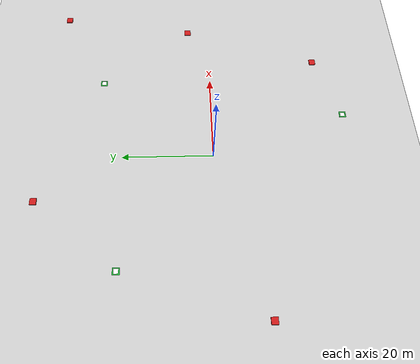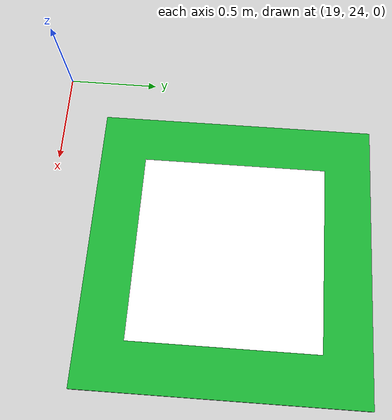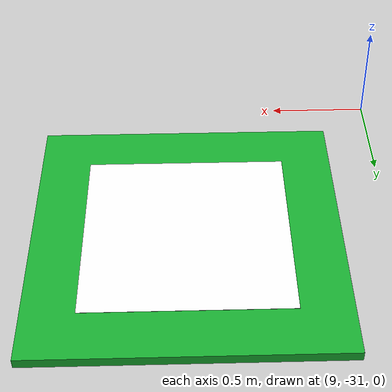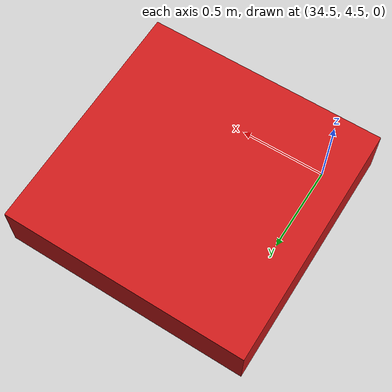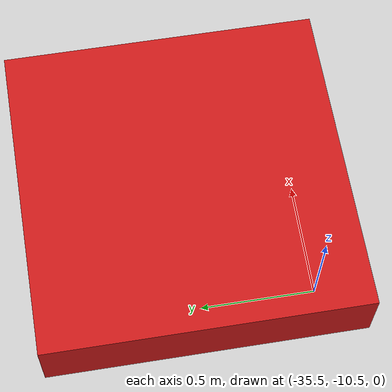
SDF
<?xml version="1.0" encoding="UTF-8"?>
<sdf version="1.9">
  <world name="patrol_site">
    <physics type="ode">
      <max_step_size>0.004</max_step_size>
      <real_time_factor>1.0</real_time_factor>
      <real_time_update_rate>250</real_time_update_rate>
    </physics>
    <gravity>0 0 -9.8</gravity>
    <magnetic_field>6e-06 2.3e-05 -4.2e-05</magnetic_field>
    <atmosphere type="adiabatic"/>
    <scene>
      <grid>false</grid>
      <ambient>0.4 0.4 0.4 1</ambient>
      <background>0.7 0.7 0.7 1</background>
      <shadows>true</shadows>
    </scene>
    <model name="ground_plane">
      <static>true</static>
      <link name="link">
        <collision name="collision">
          <geometry><plane><normal>0 0 1</normal><size>1 1</size></plane></geometry>
        </collision>
        <visual name="visual">
          <geometry><plane><normal>0 0 1</normal><size>500 500</size></plane></geometry>
          <material><ambient>0.8 0.8 0.8 1</ambient><diffuse>0.8 0.8 0.8 1</diffuse><specular>0.8 0.8 0.8 1</specular></material>
        </visual>
      </link>
    </model>
    <light name="sunUTC" type="directional">
      <pose>0 0 500 0 -0 0</pose>
      <cast_shadows>true</cast_shadows>
      <intensity>1</intensity>
      <direction>0.001 0.625 -0.78</direction>
      <diffuse>0.904 0.904 0.904 1</diffuse>
      <specular>0.271 0.271 0.271 1</specular>
      <attenuation><range>2000</range><linear>0</linear><constant>1</constant><quadratic>0</quadratic></attenuation>
    </light>
    <spherical_coordinates>
      <surface_model>EARTH_WGS84</surface_model>
      <world_frame_orientation>ENU</world_frame_orientation>
      <latitude_deg>47.397971057728974</latitude_deg>
      <longitude_deg>8.546163739800146</longitude_deg>
      <elevation>0</elevation>
    </spherical_coordinates>

    <model name="pad_G1">
      <static>true</static>
      <pose>20 25 0.025 0 0 0</pose>
      <link name="link">
        <collision name="collision"><geometry><box><size>1.5 1.5 0.05</size></box></geometry></collision>
        <visual name="visual">
          <geometry><box><size>1.5 1.5 0.05</size></box></geometry>
          <material><ambient>0.1 0.7 0.2 1</ambient><diffuse>0.1 0.7 0.2 1</diffuse><specular>0.1 0.1 0.1 1</specular></material>
        </visual>
      </link>
    </model>
    <include>
      <uri>model://tag36h11_0</uri>
      <name>tag_G1</name>
      <pose>20 25 0.052 0 0 0</pose>
    </include>
    <model name="pad_G2">
      <static>true</static>
      <pose>-25 20 0.025 0 0 0</pose>
      <link name="link">
        <collision name="collision"><geometry><box><size>1.5 1.5 0.05</size></box></geometry></collision>
        <visual name="visual">
          <geometry><box><size>1.5 1.5 0.05</size></box></geometry>
          <material><ambient>0.1 0.7 0.2 1</ambient><diffuse>0.1 0.7 0.2 1</diffuse><specular>0.1 0.1 0.1 1</specular></material>
        </visual>
      </link>
    </model>
    <include>
      <uri>model://tag36h11_1</uri>
      <name>tag_G2</name>
      <pose>-25 20 0.052 0 0 0</pose>
    </include>
    <model name="pad_G3">
      <static>true</static>
      <pose>10 -30 0.025 0 0 0</pose>
      <link name="link">
        <collision name="collision"><geometry><box><size>1.5 1.5 0.05</size></box></geometry></collision>
        <visual name="visual">
          <geometry><box><size>1.5 1.5 0.05</size></box></geometry>
          <material><ambient>0.1 0.7 0.2 1</ambient><diffuse>0.1 0.7 0.2 1</diffuse><specular>0.1 0.1 0.1 1</specular></material>
        </visual>
      </link>
    </model>
    <include>
      <uri>model://tag36h11_2</uri>
      <name>tag_G3</name>
      <pose>10 -30 0.052 0 0 0</pose>
    </include>
    <model name="box_R1">
      <static>true</static>
      <pose>35 5 0.150 0 0 0</pose>
      <link name="link">
        <collision name="collision"><geometry><box><size>1.4 1.4 0.3</size></box></geometry></collision>
        <visual name="visual">
          <geometry><box><size>1.4 1.4 0.3</size></box></geometry>
          <material><ambient>0.8 0.1 0.1 1</ambient><diffuse>0.8 0.1 0.1 1</diffuse><specular>0.1 0.1 0.1 1</specular></material>
        </visual>
      </link>
    </model>
    <model name="box_R2">
      <static>true</static>
      <pose>-35 -10 0.150 0 0 0</pose>
      <link name="link">
        <collision name="collision"><geometry><box><size>1.4 1.4 0.3</size></box></geometry></collision>
        <visual name="visual">
          <geometry><box><size>1.4 1.4 0.3</size></box></geometry>
          <material><ambient>0.8 0.1 0.1 1</ambient><diffuse>0.8 0.1 0.1 1</diffuse><specular>0.1 0.1 0.1 1</specular></material>
        </visual>
      </link>
    </model>
    <model name="box_R3">
      <static>true</static>
      <pose>25 -25 0.150 0 0 0</pose>
      <link name="link">
        <collision name="collision"><geometry><box><size>1.4 1.4 0.3</size></box></geometry></collision>
        <visual name="visual">
          <geometry><box><size>1.4 1.4 0.3</size></box></geometry>
          <material><ambient>0.8 0.1 0.1 1</ambient><diffuse>0.8 0.1 0.1 1</diffuse><specular>0.1 0.1 0.1 1</specular></material>
        </visual>
      </link>
    </model>
    <model name="box_R4">
      <static>true</static>
      <pose>-10 38 0.150 0 0 0</pose>
      <link name="link">
        <collision name="collision"><geometry><box><size>1.4 1.4 0.3</size></box></geometry></collision>
        <visual name="visual">
          <geometry><box><size>1.4 1.4 0.3</size></box></geometry>
          <material><ambient>0.8 0.1 0.1 1</ambient><diffuse>0.8 0.1 0.1 1</diffuse><specular>0.1 0.1 0.1 1</specular></material>
        </visual>
      </link>
    </model>
    <model name="box_R5">
      <static>true</static>
      <pose>40 35 0.150 0 0 0</pose>
      <link name="link">
        <collision name="collision"><geometry><box><size>1.4 1.4 0.3</size></box></geometry></collision>
        <visual name="visual">
          <geometry><box><size>1.4 1.4 0.3</size></box></geometry>
          <material><ambient>0.8 0.1 0.1 1</ambient><diffuse>0.8 0.1 0.1 1</diffuse><specular>0.1 0.1 0.1 1</specular></material>
        </visual>
      </link>
    </model>
  </world>
</sdf>

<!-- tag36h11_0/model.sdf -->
<!-- AprilTag tag36h11 編號 0。貼圖 10×10 格（外圍 1 格白邊），平面 1.0 m → 黑框邊長 0.8 m（偵測的 tag_size） -->
<sdf version="1.9">
  <model name="tag36h11_0">
    <static>true</static>
    <link name="link">
      <visual name="tag">
        <geometry>
          <plane>
            <normal>0 0 1</normal>
            <size>1.0 1.0</size>
          </plane>
        </geometry>
        <material>
          <ambient>1 1 1 1</ambient>
          <diffuse>1 1 1 1</diffuse>
          <specular>0.1 0.1 0.1 1</specular>
          <pbr>
            <metal>
              <albedo_map>model://tag36h11_0/materials/textures/tag36h11_0.png</albedo_map>
              <roughness>1.0</roughness>
              <metalness>0.0</metalness>
            </metal>
          </pbr>
        </material>
      </visual>
    </link>
  </model>
</sdf>

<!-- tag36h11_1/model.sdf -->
<!-- AprilTag tag36h11 編號 1。貼圖 10×10 格（外圍 1 格白邊），平面 1.0 m → 黑框邊長 0.8 m（偵測的 tag_size） -->
<sdf version="1.9">
  <model name="tag36h11_1">
    <static>true</static>
    <link name="link">
      <visual name="tag">
        <geometry>
          <plane>
            <normal>0 0 1</normal>
            <size>1.0 1.0</size>
          </plane>
        </geometry>
        <material>
          <ambient>1 1 1 1</ambient>
          <diffuse>1 1 1 1</diffuse>
          <specular>0.1 0.1 0.1 1</specular>
          <pbr>
            <metal>
              <albedo_map>model://tag36h11_1/materials/textures/tag36h11_1.png</albedo_map>
              <roughness>1.0</roughness>
              <metalness>0.0</metalness>
            </metal>
          </pbr>
        </material>
      </visual>
    </link>
  </model>
</sdf>

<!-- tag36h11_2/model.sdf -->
<!-- AprilTag tag36h11 編號 2。貼圖 10×10 格（外圍 1 格白邊），平面 1.0 m → 黑框邊長 0.8 m（偵測的 tag_size） -->
<sdf version="1.9">
  <model name="tag36h11_2">
    <static>true</static>
    <link name="link">
      <visual name="tag">
        <geometry>
          <plane>
            <normal>0 0 1</normal>
            <size>1.0 1.0</size>
          </plane>
        </geometry>
        <material>
          <ambient>1 1 1 1</ambient>
          <diffuse>1 1 1 1</diffuse>
          <specular>0.1 0.1 0.1 1</specular>
          <pbr>
            <metal>
              <albedo_map>model://tag36h11_2/materials/textures/tag36h11_2.png</albedo_map>
              <roughness>1.0</roughness>
              <metalness>0.0</metalness>
            </metal>
          </pbr>
        </material>
      </visual>
    </link>
  </model>
</sdf>
